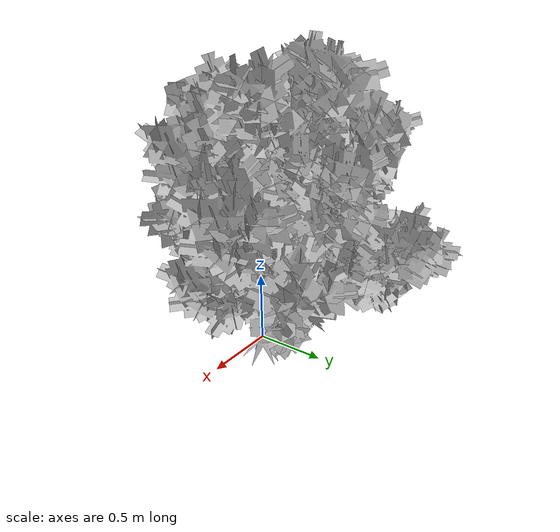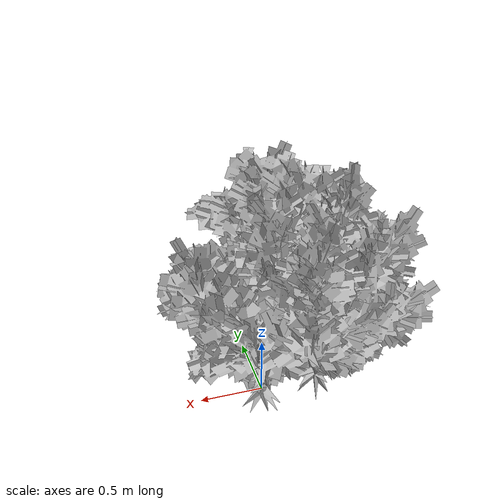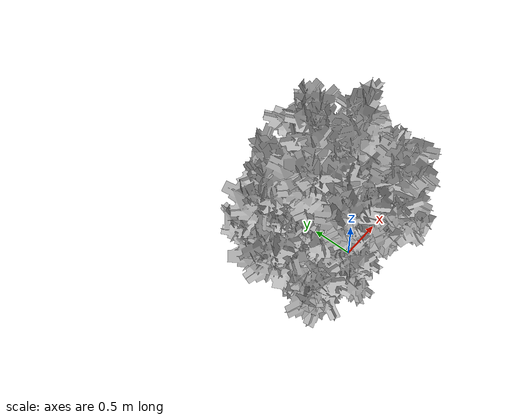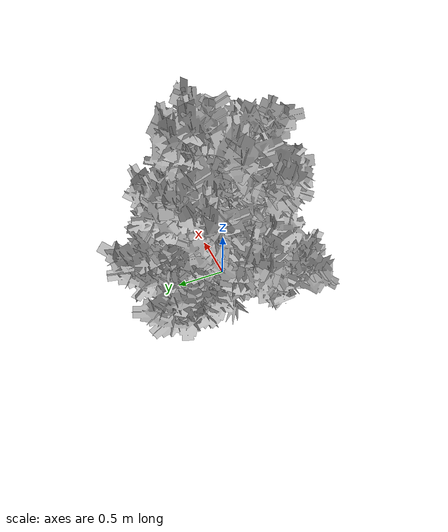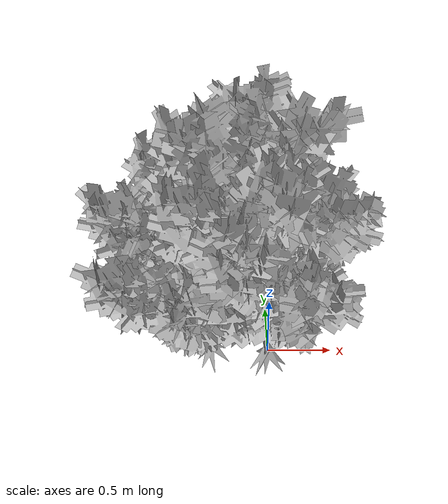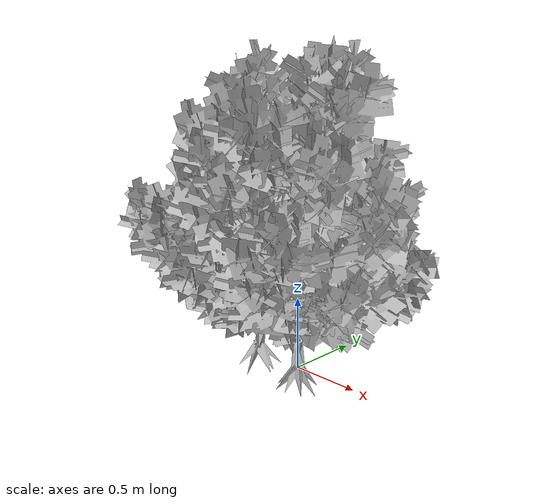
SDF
<?xml version="1.0" ?>
<sdf version="1.6">
  <model name="bush8">
    <static>1</static>
    <link name="link">
      <visual name="branch">
        <geometry>
          <mesh>
            <uri>model://bush8/meshes/OC29_8.obj</uri>
          </mesh>
        </geometry>
       <transparency>0.000</transparency>
        <cast_shadows>1</cast_shadows>
      </visual>
    </link>
  </model>
</sdf>
